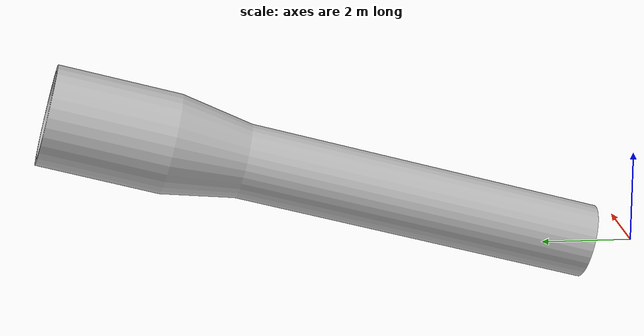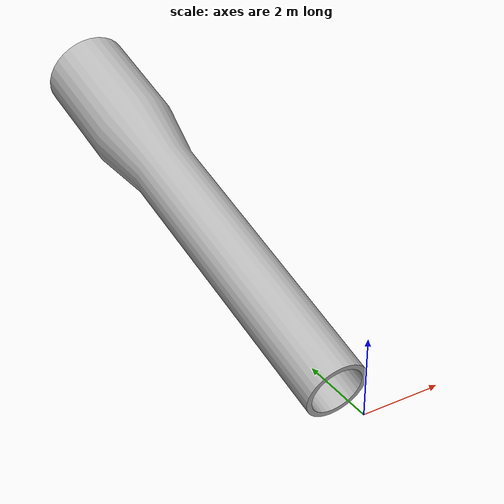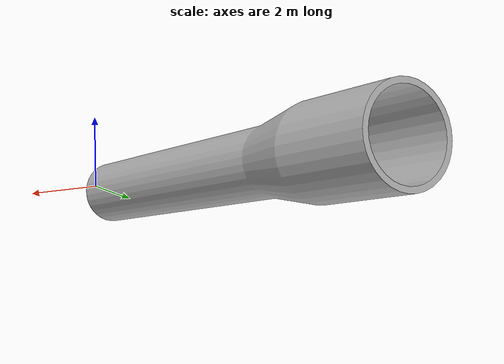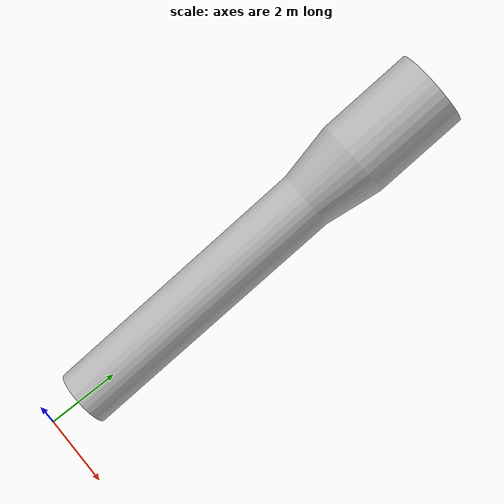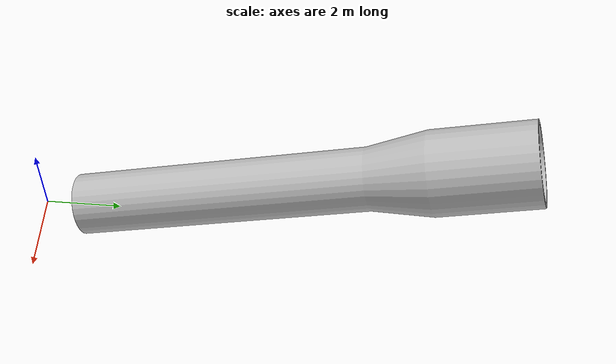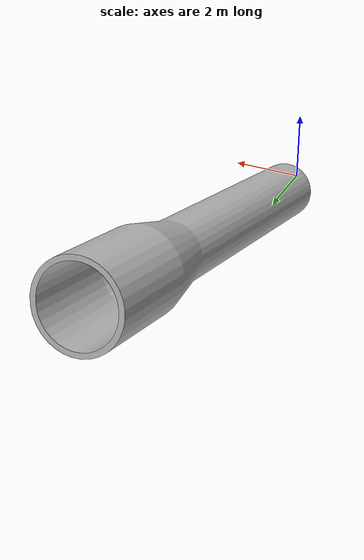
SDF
<?xml version="1.0" ?>
<sdf version="1.4">

<model name="tunnel">
        <static>true</static>
	<link name="link">

	<!-- location of the tunnel inside the world -->
	<pose>0. 1. 0. 0.2618 0. 0.</pose>
		<collision name="collision">
			<geometry>
		    	    <mesh>
		    	        <!-- scaling for better fit the robot model -->
				<uri>model://tunnel/mesh/gasdotto.stl</uri>
				<scale>1. 1. 1.</scale>
			    </mesh>
			</geometry>
		</collision>

		<visual name="visual">
			<geometry>
			    <mesh>
				<uri>model://tunnel/mesh/gasdotto.stl</uri>
				<scale>1. 1. 1. </scale>
			    </mesh>
			</geometry>
		</visual>
	</link>
</model>
</sdf>
